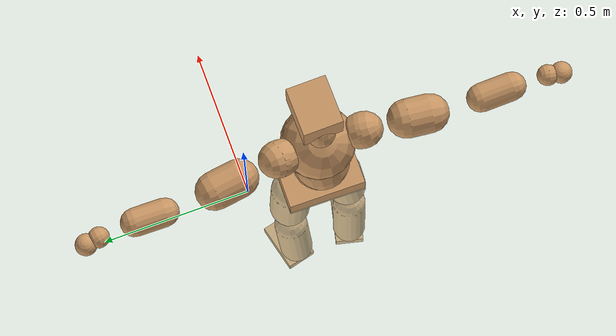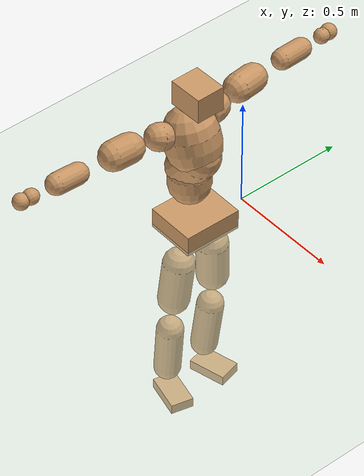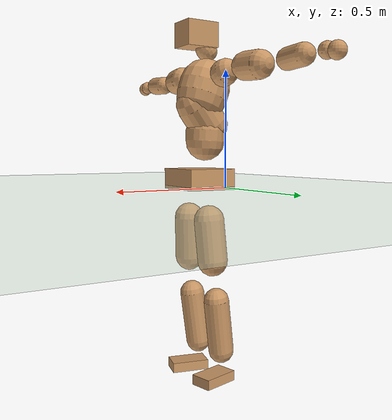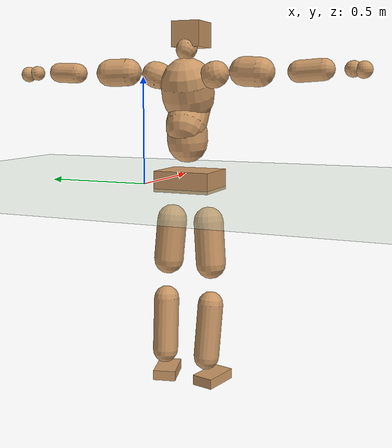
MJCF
<mujoco model="humanoid">
  <compiler coordinate="local" angle="radian"/>
  <default>
    <joint damping="0.0" armature="0.01" stiffness="0.0" limited="true"/>
    <geom conaffinity="1" condim="3" contype="7" margin="0.001" rgba="0.8 0.6 .4 1"/>
  </default>
  <asset>
    <texture type="skybox" builtin="gradient" rgb1=".4 .5 .6" rgb2="0 0 0" width="100" height="100"/>
    <texture builtin="flat" height="1278" mark="cross" markrgb="1 1 1" name="texgeom" random="0.01" rgb1="0.8 0.6 0.4" rgb2="0.8 0.6 0.4" type="cube" width="127"/>
    <texture builtin="checker" height="100" name="texplane" rgb1="0 0 0" rgb2="0.8 0.8 0.8" type="2d" width="100"/>
    <material name="MatPlane" reflectance="0.5" shininess="1" specular="1" texrepeat="60 60" texture="texplane"/>
    <material name="geom" texture="texgeom" texuniform="true"/>
  </asset>
  <worldbody>
    <light cutoff="100" diffuse="1 1 1" dir="-0 0 -1.3" directional="true" exponent="1" pos="0 0 1.3" specular=".1 .1 .1"/>
    <geom conaffinity="1" condim="3" name="floor" pos="0 0 0" rgba="0.8 0.9 0.8 1" size="100 100 .2" type="plane" material="MatPlane"/>
    <body name="Pelvis" pos="-0.0015 -0.2388 0.0452">
      <freejoint name="Pelvis"/>
      <geom type="box" contype="1" conaffinity="1" density="5359.375266" pos="-0.0053 0.0001 -0.0145" size="0.113 0.1302 0.0473" quat="1.0000 0.0000 0.0000 -0.0074" name="Pelvis"/>
      <body name="L_Hip" pos="0.001 0.0839 -0.1026">
        <joint name="L_Hip_x" type="hinge" pos="0 0 0" axis="1 0 0" stiffness="1600" damping="160" armature="0.02" range="-180.0000 180.0000"/>
        <joint name="L_Hip_y" type="hinge" pos="0 0 0" axis="0 1 0" stiffness="1600" damping="160" armature="0.02" range="-180.0000 180.0000"/>
        <joint name="L_Hip_z" type="hinge" pos="0 0 0" axis="0 0 1" stiffness="1600" damping="160" armature="0.02" range="-180.0000 180.0000"/>
        <geom type="capsule" contype="1" conaffinity="1" density="2040.816327" size="0.069" fromto="-0.0060 0.0066 -0.0986 -0.0174 0.0193 -0.2870" name="L_Hip"/>
        <body name="L_Knee" pos="-0.0234 0.026 -0.3856">
          <joint name="L_Knee_x" type="hinge" pos="0 0 0" axis="1 0 0" stiffness="1600" damping="160" armature="0.02" range="-180.0000 180.0000"/>
          <joint name="L_Knee_y" type="hinge" pos="0 0 0" axis="0 1 0" stiffness="1600" damping="160" armature="0.02" range="-180.0000 180.0000"/>
          <joint name="L_Knee_z" type="hinge" pos="0 0 0" axis="0 0 1" stiffness="1600" damping="160" armature="0.02" range="-180.0000 180.0000"/>
          <geom type="capsule" contype="1" conaffinity="1" density="1234.567901" size="0.0584" fromto="-0.0110 -0.0025 -0.0877 -0.0414 -0.0093 -0.3313" name="L_Knee"/>
          <body name="L_Ankle" pos="-0.0524 -0.0118 -0.419">
            <joint name="L_Ankle_x" type="hinge" pos="0 0 0" axis="1 0 0" stiffness="1600" damping="160" armature="0.02" range="-180.0000 180.0000"/>
            <joint name="L_Ankle_y" type="hinge" pos="0 0 0" axis="0 1 0" stiffness="1600" damping="160" armature="0.02" range="-180.0000 180.0000"/>
            <joint name="L_Ankle_z" type="hinge" pos="0 0 0" axis="0 0 1" stiffness="1600" damping="160" armature="0.02" range="-180.0000 180.0000"/>
            <geom type="box" contype="1" conaffinity="1" density="1000.000032" pos="0.0598 0.0145 -0.0304" size="0.0852 0.0521 0.0232" quat="0.9929 0.0000 0.0000 0.1186" name="L_Ankle"/>
            <body name="L_Toe" pos="0.1197 0.029 -0.0607">
              <joint name="L_Toe_x" type="hinge" pos="0 0 0" axis="1 0 0" stiffness="1000" damping="100" armature="0.02" range="-180.0000 180.0000"/>
              <joint name="L_Toe_y" type="hinge" pos="0 0 0" axis="0 1 0" stiffness="1000" damping="100" armature="0.02" range="-180.0000 180.0000"/>
              <joint name="L_Toe_z" type="hinge" pos="0 0 0" axis="0 0 1" stiffness="1000" damping="100" armature="0.02" range="-180.0000 180.0000"/>
              <geom type="box" contype="1" conaffinity="1" density="7918131.297106" pos="0.0000 0.0000 0.0303" size="0.0011 0.0026 0.0012" quat="0.9922 0.0000 0.0000 0.1244" name="L_Toe"/>
            </body>
          </body>
        </body>
      </body>
      <body name="R_Hip" pos="0.005 -0.0808 -0.1045">
        <joint name="R_Hip_x" type="hinge" pos="0 0 0" axis="1 0 0" stiffness="1600" damping="160" armature="0.02" range="-180.0000 180.0000"/>
        <joint name="R_Hip_y" type="hinge" pos="0 0 0" axis="0 1 0" stiffness="1600" damping="160" armature="0.02" range="-180.0000 180.0000"/>
        <joint name="R_Hip_z" type="hinge" pos="0 0 0" axis="0 0 1" stiffness="1600" damping="160" armature="0.02" range="-180.0000 180.0000"/>
        <geom type="capsule" contype="1" conaffinity="1" density="2040.816327" size="0.068" fromto="-0.0062 -0.0088 -0.0974 -0.0184 -0.0264 -0.2919" name="R_Hip"/>
        <body name="R_Knee" pos="-0.0246 -0.0353 -0.3893">
          <joint name="R_Knee_x" type="hinge" pos="0 0 0" axis="1 0 0" stiffness="1600" damping="160" armature="0.02" range="-180.0000 180.0000"/>
          <joint name="R_Knee_y" type="hinge" pos="0 0 0" axis="0 1 0" stiffness="1600" damping="160" armature="0.02" range="-180.0000 180.0000"/>
          <joint name="R_Knee_z" type="hinge" pos="0 0 0" axis="0 0 1" stiffness="1600" damping="160" armature="0.02" range="-180.0000 180.0000"/>
          <geom type="capsule" contype="1" conaffinity="1" density="1234.567901" size="0.0582" fromto="-0.0105 0.0029 -0.0876 -0.0399 0.0110 -0.3326" name="R_Knee"/>
          <body name="R_Ankle" pos="-0.0505 0.0138 -0.4202">
            <joint name="R_Ankle_x" type="hinge" pos="0 0 0" axis="1 0 0" stiffness="1600" damping="160" armature="0.02" range="-180.0000 180.0000"/>
            <joint name="R_Ankle_y" type="hinge" pos="0 0 0" axis="0 1 0" stiffness="1600" damping="160" armature="0.02" range="-180.0000 180.0000"/>
            <joint name="R_Ankle_z" type="hinge" pos="0 0 0" axis="0 0 1" stiffness="1600" damping="160" armature="0.02" range="-180.0000 180.0000"/>
            <geom type="box" contype="1" conaffinity="1" density="1000.000005" pos="0.0623 -0.0152 -0.0263" size="0.0876 0.0504 0.0231" quat="0.9929 0.0000 0.0000 -0.1191" name="R_Ankle"/>
            <body name="R_Toe" pos="0.1247 -0.0304 -0.0526">
              <joint name="R_Toe_x" type="hinge" pos="0 0 0" axis="1 0 0" stiffness="1000" damping="100" armature="0.02" range="-180.0000 180.0000"/>
              <joint name="R_Toe_y" type="hinge" pos="0 0 0" axis="0 1 0" stiffness="1000" damping="100" armature="0.02" range="-180.0000 180.0000"/>
              <joint name="R_Toe_z" type="hinge" pos="0 0 0" axis="0 0 1" stiffness="1000" damping="100" armature="0.02" range="-180.0000 180.0000"/>
              <geom type="box" contype="1" conaffinity="1" density="7620797.279935" pos="0.0000 0.0000 0.0280" size="0.0011 0.0025 0.0012" quat="0.9939 0.0000 0.0000 -0.1099" name="R_Toe"/>
            </body>
          </body>
        </body>
      </body>
      <body name="Torso" pos="-0.0377 -0.0026 0.1204">
        <joint name="Torso_x" type="hinge" pos="0 0 0" axis="1 0 0" stiffness="2000" damping="200" armature="0.02" range="-180.0000 180.0000"/>
        <joint name="Torso_y" type="hinge" pos="0 0 0" axis="0 1 0" stiffness="2000" damping="200" armature="0.02" range="-180.0000 180.0000"/>
        <joint name="Torso_z" type="hinge" pos="0 0 0" axis="0 0 1" stiffness="2000" damping="200" armature="0.02" range="-180.0000 180.0000"/>
        <geom type="capsule" contype="1" conaffinity="1" density="2040.816327" size="0.0913" fromto="-0.0032 0.0028 0.0912 -0.0014 0.0012 0.0404" name="Torso"/>
        <body name="Spine" pos="-0.0047 0.004 0.1316">
          <joint name="Spine_x" type="hinge" pos="0 0 0" axis="1 0 0" stiffness="2000" damping="200" armature="0.02" range="-180.0000 180.0000"/>
          <joint name="Spine_y" type="hinge" pos="0 0 0" axis="0 1 0" stiffness="2000" damping="200" armature="0.02" range="-180.0000 180.0000"/>
          <joint name="Spine_z" type="hinge" pos="0 0 0" axis="0 0 1" stiffness="2000" damping="200" armature="0.02" range="-180.0000 180.0000"/>
          <geom type="capsule" contype="1" conaffinity="1" density="2040.816327" size="0.0911" fromto="0.0554 0.0027 0.0722 -0.0135 -0.0007 -0.0176" name="Spine"/>
          <body name="Chest" pos="0.0419 0.0021 0.0547">
            <joint name="Chest_x" type="hinge" pos="0 0 0" axis="1 0 0" stiffness="2000" damping="200" armature="0.02" range="-180.0000 180.0000"/>
            <joint name="Chest_y" type="hinge" pos="0 0 0" axis="0 1 0" stiffness="2000" damping="200" armature="0.02" range="-180.0000 180.0000"/>
            <joint name="Chest_z" type="hinge" pos="0 0 0" axis="0 0 1" stiffness="2000" damping="200" armature="0.02" range="-180.0000 180.0000"/>
            <geom type="capsule" contype="1" conaffinity="1" density="2040.816327" size="0.1179" fromto="-0.0370 -0.0005 0.1119 -0.0192 -0.0002 0.0581" name="Chest"/>
            <body name="Neck" pos="-0.0699 -0.0016 0.2376">
              <joint name="Neck_x" type="hinge" pos="0 0 0" axis="1 0 0" stiffness="1000" damping="100" armature="0.02" range="-180.0000 180.0000"/>
              <joint name="Neck_y" type="hinge" pos="0 0 0" axis="0 1 0" stiffness="1000" damping="100" armature="0.02" range="-180.0000 180.0000"/>
              <joint name="Neck_z" type="hinge" pos="0 0 0" axis="0 0 1" stiffness="1000" damping="100" armature="0.02" range="-180.0000 180.0000"/>
              <geom type="capsule" contype="1" conaffinity="1" density="1000" size="0.0467" fromto="0.0297 -0.0009 0.0360 0.0208 -0.0006 0.0252" name="Neck"/>
              <body name="Head" pos="0.0505 -0.0015 0.0612">
                <joint name="Head_x" type="hinge" pos="0 0 0" axis="1 0 0" stiffness="1000" damping="100" armature="0.02" range="-180.0000 180.0000"/>
                <joint name="Head_y" type="hinge" pos="0 0 0" axis="0 1 0" stiffness="1000" damping="100" armature="0.02" range="-180.0000 180.0000"/>
                <joint name="Head_z" type="hinge" pos="0 0 0" axis="0 0 1" stiffness="1000" damping="100" armature="0.02" range="-180.0000 180.0000"/>
                <geom type="box" contype="1" conaffinity="1" density="2250.000119" pos="0.0262 0.0003 0.0316" size="0.0779 0.0643 0.0563" quat="1.0000 0.0000 0.0000 0.0051" name="Head"/>
              </body>
            </body>
            <body name="L_Thorax" pos="-0.0474 0.0899 0.1368">
              <joint name="L_Thorax_x" type="hinge" pos="0 0 0" axis="1 0 0" stiffness="1000" damping="100" armature="0.02" range="-180.0000 180.0000"/>
              <joint name="L_Thorax_y" type="hinge" pos="0 0 0" axis="0 1 0" stiffness="1000" damping="100" armature="0.02" range="-180.0000 180.0000"/>
              <joint name="L_Thorax_z" type="hinge" pos="0 0 0" axis="0 0 1" stiffness="1000" damping="100" armature="0.02" range="-180.0000 180.0000"/>
              <geom type="capsule" contype="1" conaffinity="1" density="1000" size="0.0594" fromto="-0.0088 0.0557 0.0189 -0.0060 0.0381 0.0129" name="L_Thorax"/>
              <body name="L_Shoulder" pos="-0.0148 0.0938 0.0318">
                <joint name="L_Shoulder_x" type="hinge" pos="0 0 0" axis="1 0 0" stiffness="1000" damping="100" armature="0.02" range="-720.0000 720.0000"/>
                <joint name="L_Shoulder_y" type="hinge" pos="0 0 0" axis="0 1 0" stiffness="1000" damping="100" armature="0.02" range="-720.0000 720.0000"/>
                <joint name="L_Shoulder_z" type="hinge" pos="0 0 0" axis="0 0 1" stiffness="1000" damping="100" armature="0.02" range="-720.0000 720.0000"/>
                <geom type="capsule" contype="1" conaffinity="1" density="1000" size="0.062" fromto="-0.0117 0.0913 -0.0027 -0.0227 0.1764 -0.0053" name="L_Shoulder"/>
                <body name="L_Elbow" pos="-0.0344 0.2677 -0.008">
                  <joint name="L_Elbow_x" type="hinge" pos="0 0 0" axis="1 0 0" stiffness="1000" damping="100" armature="0.02" range="-720.0000 720.0000"/>
                  <joint name="L_Elbow_y" type="hinge" pos="0 0 0" axis="0 1 0" stiffness="1000" damping="100" armature="0.02" range="-720.0000 720.0000"/>
                  <joint name="L_Elbow_z" type="hinge" pos="0 0 0" axis="0 0 1" stiffness="1000" damping="100" armature="0.02" range="-720.0000 720.0000"/>
                  <geom type="capsule" contype="1" conaffinity="1" density="1000" size="0.0455" fromto="0.0007 0.0754 0.0032 0.0016 0.1734 0.0074" name="L_Elbow"/>
                  <body name="L_Wrist" pos="0.0024 0.2488 0.0106">
                    <joint name="L_Wrist_x" type="hinge" pos="0 0 0" axis="1 0 0" stiffness="600" damping="60" armature="0.02" range="-180.0000 180.0000"/>
                    <joint name="L_Wrist_y" type="hinge" pos="0 0 0" axis="0 1 0" stiffness="600" damping="60" armature="0.02" range="-180.0000 180.0000"/>
                    <joint name="L_Wrist_z" type="hinge" pos="0 0 0" axis="0 0 1" stiffness="600" damping="60" armature="0.02" range="-180.0000 180.0000"/>
                    <geom type="capsule" contype="1" conaffinity="1" density="1000" size="0.0336" fromto="-0.0069 0.0427 -0.0050 -0.0072 0.0446 -0.0052" name="L_Wrist"/>
                    <body name="L_Hand" pos="-0.0142 0.0873 -0.0102">
                      <joint name="L_Hand_x" type="hinge" pos="0 0 0" axis="1 0 0" stiffness="600" damping="60" armature="0.02" range="-180.0000 180.0000"/>
                      <joint name="L_Hand_y" type="hinge" pos="0 0 0" axis="0 1 0" stiffness="600" damping="60" armature="0.02" range="-180.0000 180.0000"/>
                      <joint name="L_Hand_z" type="hinge" pos="0 0 0" axis="0 0 1" stiffness="600" damping="60" armature="0.02" range="-180.0000 180.0000"/>
                      <geom type="sphere" contype="1" conaffinity="1" density="1000" size="0.0354" pos="0.0000 0.0000 0.0000" name="L_Hand"/>
                    </body>
                  </body>
                </body>
              </body>
            </body>
            <body name="R_Thorax" pos="-0.0515 -0.0904 0.1355">
              <joint name="R_Thorax_x" type="hinge" pos="0 0 0" axis="1 0 0" stiffness="1000" damping="100" armature="0.02" range="-180.0000 180.0000"/>
              <joint name="R_Thorax_y" type="hinge" pos="0 0 0" axis="0 1 0" stiffness="1000" damping="100" armature="0.02" range="-180.0000 180.0000"/>
              <joint name="R_Thorax_z" type="hinge" pos="0 0 0" axis="0 0 1" stiffness="1000" damping="100" armature="0.02" range="-180.0000 180.0000"/>
              <geom type="capsule" contype="1" conaffinity="1" density="1000" size="0.0584" fromto="-0.0072 -0.0548 0.0188 -0.0053 -0.0408 0.0141" name="R_Thorax"/>
              <body name="R_Shoulder" pos="-0.0125 -0.0956 0.0329">
                <joint name="R_Shoulder_x" type="hinge" pos="0 0 0" axis="1 0 0" stiffness="1000" damping="100" armature="0.02" range="-720.0000 720.0000"/>
                <joint name="R_Shoulder_y" type="hinge" pos="0 0 0" axis="0 1 0" stiffness="1000" damping="100" armature="0.02" range="-720.0000 720.0000"/>
                <joint name="R_Shoulder_z" type="hinge" pos="0 0 0" axis="0 0 1" stiffness="1000" damping="100" armature="0.02" range="-720.0000 720.0000"/>
                <geom type="capsule" contype="1" conaffinity="1" density="1000" size="0.0633" fromto="-0.0094 -0.0927 -0.0044 -0.0168 -0.1657 -0.0079" name="R_Shoulder"/>
                <body name="R_Elbow" pos="-0.0262 -0.2584 -0.0122">
                  <joint name="R_Elbow_x" type="hinge" pos="0 0 0" axis="1 0 0" stiffness="1000" damping="100" armature="0.02" range="-720.0000 720.0000"/>
                  <joint name="R_Elbow_y" type="hinge" pos="0 0 0" axis="0 1 0" stiffness="1000" damping="100" armature="0.02" range="-720.0000 720.0000"/>
                  <joint name="R_Elbow_z" type="hinge" pos="0 0 0" axis="0 0 1" stiffness="1000" damping="100" armature="0.02" range="-720.0000 720.0000"/>
                  <geom type="capsule" contype="1" conaffinity="1" density="1000" size="0.046" fromto="0.0004 -0.0758 0.0045 0.0008 -0.1788 0.0107" name="R_Elbow"/>
                  <body name="R_Wrist" pos="0.0012 -0.2546 0.0153">
                    <joint name="R_Wrist_x" type="hinge" pos="0 0 0" axis="1 0 0" stiffness="600" damping="60" armature="0.02" range="-180.0000 180.0000"/>
                    <joint name="R_Wrist_y" type="hinge" pos="0 0 0" axis="0 1 0" stiffness="600" damping="60" armature="0.02" range="-180.0000 180.0000"/>
                    <joint name="R_Wrist_z" type="hinge" pos="0 0 0" axis="0 0 1" stiffness="600" damping="60" armature="0.02" range="-180.0000 180.0000"/>
                    <geom type="capsule" contype="1" conaffinity="1" density="1000" size="0.0339" fromto="-0.0055 -0.0423 -0.0037 -0.0058 -0.0442 -0.0039" name="R_Wrist"/>
                    <body name="R_Hand" pos="-0.0114 -0.0865 -0.0076">
                      <joint name="R_Hand_x" type="hinge" pos="0 0 0" axis="1 0 0" stiffness="600" damping="60" armature="0.02" range="-180.0000 180.0000"/>
                      <joint name="R_Hand_y" type="hinge" pos="0 0 0" axis="0 1 0" stiffness="600" damping="60" armature="0.02" range="-180.0000 180.0000"/>
                      <joint name="R_Hand_z" type="hinge" pos="0 0 0" axis="0 0 1" stiffness="600" damping="60" armature="0.02" range="-180.0000 180.0000"/>
                      <geom type="sphere" contype="1" conaffinity="1" density="1000" size="0.0350" pos="0.0000 0.0000 0.0000" name="R_Hand"/>
                    </body>
                  </body>
                </body>
              </body>
            </body>
          </body>
        </body>
      </body>
    </body>
  </worldbody>
  <actuator>
    <motor name="L_Hip_x" joint="L_Hip_x" gear="500"/>
    <motor name="L_Hip_y" joint="L_Hip_y" gear="500"/>
    <motor name="L_Hip_z" joint="L_Hip_z" gear="500"/>
    <motor name="L_Knee_x" joint="L_Knee_x" gear="500"/>
    <motor name="L_Knee_y" joint="L_Knee_y" gear="500"/>
    <motor name="L_Knee_z" joint="L_Knee_z" gear="500"/>
    <motor name="L_Ankle_x" joint="L_Ankle_x" gear="500"/>
    <motor name="L_Ankle_y" joint="L_Ankle_y" gear="500"/>
    <motor name="L_Ankle_z" joint="L_Ankle_z" gear="500"/>
    <motor name="L_Toe_x" joint="L_Toe_x" gear="500"/>
    <motor name="L_Toe_y" joint="L_Toe_y" gear="500"/>
    <motor name="L_Toe_z" joint="L_Toe_z" gear="500"/>
    <motor name="R_Hip_x" joint="R_Hip_x" gear="500"/>
    <motor name="R_Hip_y" joint="R_Hip_y" gear="500"/>
    <motor name="R_Hip_z" joint="R_Hip_z" gear="500"/>
    <motor name="R_Knee_x" joint="R_Knee_x" gear="500"/>
    <motor name="R_Knee_y" joint="R_Knee_y" gear="500"/>
    <motor name="R_Knee_z" joint="R_Knee_z" gear="500"/>
    <motor name="R_Ankle_x" joint="R_Ankle_x" gear="500"/>
    <motor name="R_Ankle_y" joint="R_Ankle_y" gear="500"/>
    <motor name="R_Ankle_z" joint="R_Ankle_z" gear="500"/>
    <motor name="R_Toe_x" joint="R_Toe_x" gear="500"/>
    <motor name="R_Toe_y" joint="R_Toe_y" gear="500"/>
    <motor name="R_Toe_z" joint="R_Toe_z" gear="500"/>
    <motor name="Torso_x" joint="Torso_x" gear="500"/>
    <motor name="Torso_y" joint="Torso_y" gear="500"/>
    <motor name="Torso_z" joint="Torso_z" gear="500"/>
    <motor name="Spine_x" joint="Spine_x" gear="500"/>
    <motor name="Spine_y" joint="Spine_y" gear="500"/>
    <motor name="Spine_z" joint="Spine_z" gear="500"/>
    <motor name="Chest_x" joint="Chest_x" gear="500"/>
    <motor name="Chest_y" joint="Chest_y" gear="500"/>
    <motor name="Chest_z" joint="Chest_z" gear="500"/>
    <motor name="Neck_x" joint="Neck_x" gear="500"/>
    <motor name="Neck_y" joint="Neck_y" gear="500"/>
    <motor name="Neck_z" joint="Neck_z" gear="500"/>
    <motor name="Head_x" joint="Head_x" gear="500"/>
    <motor name="Head_y" joint="Head_y" gear="500"/>
    <motor name="Head_z" joint="Head_z" gear="500"/>
    <motor name="L_Thorax_x" joint="L_Thorax_x" gear="500"/>
    <motor name="L_Thorax_y" joint="L_Thorax_y" gear="500"/>
    <motor name="L_Thorax_z" joint="L_Thorax_z" gear="500"/>
    <motor name="L_Shoulder_x" joint="L_Shoulder_x" gear="500"/>
    <motor name="L_Shoulder_y" joint="L_Shoulder_y" gear="500"/>
    <motor name="L_Shoulder_z" joint="L_Shoulder_z" gear="500"/>
    <motor name="L_Elbow_x" joint="L_Elbow_x" gear="500"/>
    <motor name="L_Elbow_y" joint="L_Elbow_y" gear="500"/>
    <motor name="L_Elbow_z" joint="L_Elbow_z" gear="500"/>
    <motor name="L_Wrist_x" joint="L_Wrist_x" gear="500"/>
    <motor name="L_Wrist_y" joint="L_Wrist_y" gear="500"/>
    <motor name="L_Wrist_z" joint="L_Wrist_z" gear="500"/>
    <motor name="L_Hand_x" joint="L_Hand_x" gear="500"/>
    <motor name="L_Hand_y" joint="L_Hand_y" gear="500"/>
    <motor name="L_Hand_z" joint="L_Hand_z" gear="500"/>
    <motor name="R_Thorax_x" joint="R_Thorax_x" gear="500"/>
    <motor name="R_Thorax_y" joint="R_Thorax_y" gear="500"/>
    <motor name="R_Thorax_z" joint="R_Thorax_z" gear="500"/>
    <motor name="R_Shoulder_x" joint="R_Shoulder_x" gear="500"/>
    <motor name="R_Shoulder_y" joint="R_Shoulder_y" gear="500"/>
    <motor name="R_Shoulder_z" joint="R_Shoulder_z" gear="500"/>
    <motor name="R_Elbow_x" joint="R_Elbow_x" gear="500"/>
    <motor name="R_Elbow_y" joint="R_Elbow_y" gear="500"/>
    <motor name="R_Elbow_z" joint="R_Elbow_z" gear="500"/>
    <motor name="R_Wrist_x" joint="R_Wrist_x" gear="500"/>
    <motor name="R_Wrist_y" joint="R_Wrist_y" gear="500"/>
    <motor name="R_Wrist_z" joint="R_Wrist_z" gear="500"/>
    <motor name="R_Hand_x" joint="R_Hand_x" gear="500"/>
    <motor name="R_Hand_y" joint="R_Hand_y" gear="500"/>
    <motor name="R_Hand_z" joint="R_Hand_z" gear="500"/>
  </actuator>
  <contact>
    <exclude body1="Torso" body2="Chest"/>
    <exclude body1="Head" body2="Chest"/>
    <exclude body1="R_Knee" body2="R_Toe"/>
    <exclude body1="R_Knee" body2="L_Ankle"/>
    <exclude body1="R_Knee" body2="L_Toe"/>
    <exclude body1="L_Knee" body2="L_Toe"/>
    <exclude body1="L_Knee" body2="R_Ankle"/>
    <exclude body1="L_Knee" body2="R_Toe"/>
    <exclude body1="L_Shoulder" body2="Chest"/>
    <exclude body1="R_Shoulder" body2="Chest"/>
  </contact>
  <sensor/>
  <size njmax="700" nconmax="700"/>
</mujoco>
